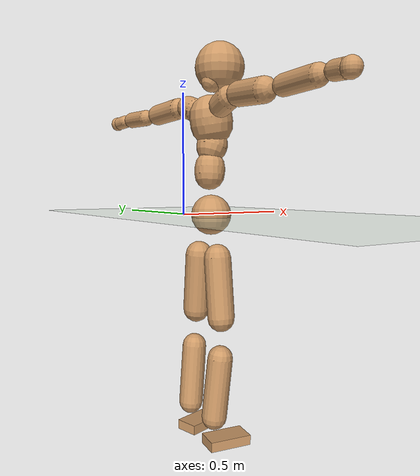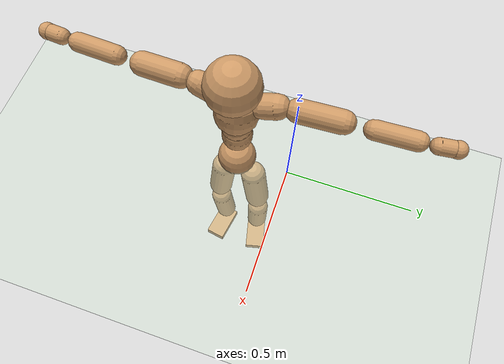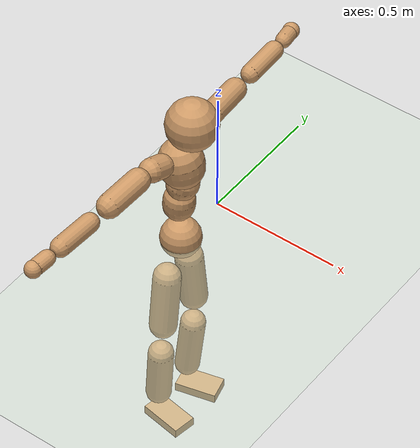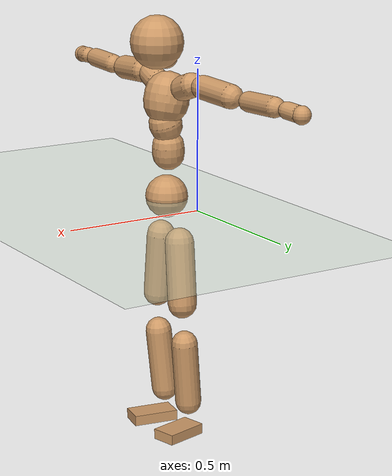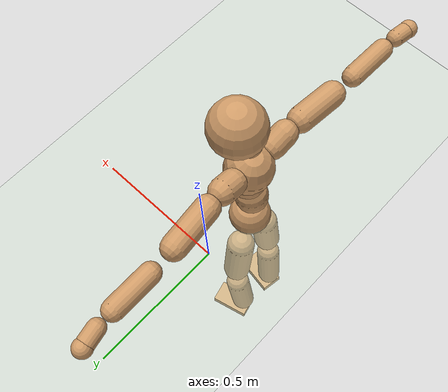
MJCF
<mujoco model="humanoid">
  <compiler coordinate="local"/>
  <default>
    <joint damping="0.0" armature="0.01" stiffness="0.0" limited="true"/>
    <geom conaffinity="1" condim="3" contype="7" margin="0.001" rgba="0.8 0.6 .4 1"/>
  </default>
  <asset>
    <texture type="skybox" builtin="gradient" rgb1=".4 .5 .6" rgb2="0 0 0" width="100" height="100"/>
    <texture builtin="flat" height="1278" mark="cross" markrgb="1 1 1" name="texgeom" random="0.01" rgb1="0.8 0.6 0.4" rgb2="0.8 0.6 0.4" type="cube" width="127"/>
    <texture builtin="checker" height="100" name="texplane" rgb1="0 0 0" rgb2="0.8 0.8 0.8" type="2d" width="100"/>
    <material name="MatPlane" reflectance="0.5" shininess="1" specular="1" texrepeat="60 60" texture="texplane"/>
    <material name="geom" texture="texgeom" texuniform="true"/>
  </asset>
  <worldbody>
    <light cutoff="100" diffuse="1 1 1" dir="-0 0 -1.3" directional="true" exponent="1" pos="0 0 1.3" specular=".1 .1 .1"/>
    <geom conaffinity="1" condim="3" name="floor" pos="0 0 0" rgba="0.8 0.9 0.8 1" size="100 100 .2" type="plane" material="MatPlane"/>
    <body name="Pelvis" pos="-0.0032 -0.2119 0.0074">
      <freejoint name="Pelvis"/>
      <geom type="sphere" contype="1" conaffinity="1" density="500" size="0.0773" pos="0.0000 0.0000 0.0000" name="Pelvis"/>
      <body name="L_Hip" pos="-0.0151 0.0571 -0.0844">
        <joint name="L_Hip_x" type="hinge" pos="0 0 0" axis="1 0 0" stiffness="800" damping="80" armature="0.02" range="-180.0000 180.0000"/>
        <joint name="L_Hip_y" type="hinge" pos="0 0 0" axis="0 1 0" stiffness="800" damping="80" armature="0.02" range="-180.0000 180.0000"/>
        <joint name="L_Hip_z" type="hinge" pos="0 0 0" axis="0 0 1" stiffness="800" damping="80" armature="0.02" range="-180.0000 180.0000"/>
        <geom type="capsule" contype="1" conaffinity="1" density="500" fromto="0.0010 0.0082 -0.0758 0.0039 0.0327 -0.3031" size="0.0528" name="L_Hip"/>
        <body name="L_Knee" pos="0.0049 0.0408 -0.3788">
          <joint name="L_Knee_x" type="hinge" pos="0 0 0" axis="1 0 0" stiffness="800" damping="80" armature="0.02" range="-180.0000 180.0000"/>
          <joint name="L_Knee_y" type="hinge" pos="0 0 0" axis="0 1 0" stiffness="800" damping="80" armature="0.02" range="-180.0000 180.0000"/>
          <joint name="L_Knee_z" type="hinge" pos="0 0 0" axis="0 0 1" stiffness="800" damping="80" armature="0.02" range="-180.0000 180.0000"/>
          <geom type="capsule" contype="1" conaffinity="1" density="500" fromto="-0.0073 -0.0026 -0.0776 -0.0291 -0.0104 -0.3104" size="0.0479" name="L_Knee"/>
          <body name="L_Ankle" pos="-0.0364 -0.013 -0.388">
            <joint name="L_Ankle_x" type="hinge" pos="0 0 0" axis="1 0 0" stiffness="800" damping="80" armature="0.02" range="-180.0000 180.0000"/>
            <joint name="L_Ankle_y" type="hinge" pos="0 0 0" axis="0 1 0" stiffness="800" damping="80" armature="0.02" range="-180.0000 180.0000"/>
            <joint name="L_Ankle_z" type="hinge" pos="0 0 0" axis="0 0 1" stiffness="800" damping="80" armature="0.02" range="-180.0000 180.0000"/>
            <geom type="box" contype="1" conaffinity="1" density="500" pos="0.0572 0.0139 -0.0271" size="0.0802 0.0459 0.0189" quat="0.9929 0.0000 0.0000 0.1192" name="L_Ankle"/>
            <body name="L_Toe" pos="0.1144 0.0279 -0.0541">
              <joint name="L_Toe_x" type="hinge" pos="0 0 0" axis="1 0 0" stiffness="500" damping="50" armature="0.02" range="-180.0000 180.0000"/>
              <joint name="L_Toe_y" type="hinge" pos="0 0 0" axis="0 1 0" stiffness="500" damping="50" armature="0.02" range="-180.0000 180.0000"/>
              <joint name="L_Toe_z" type="hinge" pos="0 0 0" axis="0 0 1" stiffness="500" damping="50" armature="0.02" range="-180.0000 180.0000"/>
              <geom type="box" contype="1" conaffinity="1" density="500" pos="0.0000 0.0000 0.0280" size="0.0009 0.0022 0.001" quat="0.9921 0.0000 0.0000 0.1253" name="L_Toe"/>
            </body>
          </body>
        </body>
      </body>
      <body name="R_Hip" pos="-0.0137 -0.0552 -0.0831">
        <joint name="R_Hip_x" type="hinge" pos="0 0 0" axis="1 0 0" stiffness="800" damping="80" armature="0.02" range="-180.0000 180.0000"/>
        <joint name="R_Hip_y" type="hinge" pos="0 0 0" axis="0 1 0" stiffness="800" damping="80" armature="0.02" range="-180.0000 180.0000"/>
        <joint name="R_Hip_z" type="hinge" pos="0 0 0" axis="0 0 1" stiffness="800" damping="80" armature="0.02" range="-180.0000 180.0000"/>
        <geom type="capsule" contype="1" conaffinity="1" density="500" fromto="-0.0001 -0.0087 -0.0767 -0.0005 -0.0346 -0.3068" size="0.0517" name="R_Hip"/>
        <body name="R_Knee" pos="-0.0006 -0.0433 -0.3835">
          <joint name="R_Knee_x" type="hinge" pos="0 0 0" axis="1 0 0" stiffness="800" damping="80" armature="0.02" range="-180.0000 180.0000"/>
          <joint name="R_Knee_y" type="hinge" pos="0 0 0" axis="0 1 0" stiffness="800" damping="80" armature="0.02" range="-180.0000 180.0000"/>
          <joint name="R_Knee_z" type="hinge" pos="0 0 0" axis="0 0 1" stiffness="800" damping="80" armature="0.02" range="-180.0000 180.0000"/>
          <geom type="capsule" contype="1" conaffinity="1" density="500" fromto="-0.0069 0.0032 -0.0774 -0.0276 0.0126 -0.3094" size="0.0484" name="R_Knee"/>
          <body name="R_Ankle" pos="-0.0344 0.0158 -0.3868">
            <joint name="R_Ankle_x" type="hinge" pos="0 0 0" axis="1 0 0" stiffness="800" damping="80" armature="0.02" range="-180.0000 180.0000"/>
            <joint name="R_Ankle_y" type="hinge" pos="0 0 0" axis="0 1 0" stiffness="800" damping="80" armature="0.02" range="-180.0000 180.0000"/>
            <joint name="R_Ankle_z" type="hinge" pos="0 0 0" axis="0 0 1" stiffness="800" damping="80" armature="0.02" range="-180.0000 180.0000"/>
            <geom type="box" contype="1" conaffinity="1" density="500" pos="0.0593 -0.0098 -0.0235" size="0.0837 0.0455 0.0191" quat="0.9967 0.0000 0.0000 -0.0817" name="R_Ankle"/>
            <body name="R_Toe" pos="0.1187 -0.0196 -0.0469">
              <joint name="R_Toe_x" type="hinge" pos="0 0 0" axis="1 0 0" stiffness="500" damping="50" armature="0.02" range="-180.0000 180.0000"/>
              <joint name="R_Toe_y" type="hinge" pos="0 0 0" axis="0 1 0" stiffness="500" damping="50" armature="0.02" range="-180.0000 180.0000"/>
              <joint name="R_Toe_z" type="hinge" pos="0 0 0" axis="0 0 1" stiffness="500" damping="50" armature="0.02" range="-180.0000 180.0000"/>
              <geom type="box" contype="1" conaffinity="1" density="500" pos="0.0000 0.0000 0.0255" size="0.0009 0.0022 0.0011" quat="0.9974 0.0000 0.0000 -0.0723" name="R_Toe"/>
            </body>
          </body>
        </body>
      </body>
      <body name="Torso" pos="-0.0118 -0.0029 0.0995">
        <joint name="Torso_x" type="hinge" pos="0 0 0" axis="1 0 0" stiffness="1000" damping="100" armature="0.02" range="-180.0000 180.0000"/>
        <joint name="Torso_y" type="hinge" pos="0 0 0" axis="0 1 0" stiffness="1000" damping="100" armature="0.02" range="-180.0000 180.0000"/>
        <joint name="Torso_z" type="hinge" pos="0 0 0" axis="0 0 1" stiffness="1000" damping="100" armature="0.02" range="-180.0000 180.0000"/>
        <geom type="capsule" contype="1" conaffinity="1" density="500" fromto="0.0058 0.0040 0.0837 0.0039 0.0027 0.0558" size="0.0585" name="Torso"/>
        <body name="Spine" pos="0.0097 0.0067 0.1395">
          <joint name="Spine_x" type="hinge" pos="0 0 0" axis="1 0 0" stiffness="1000" damping="100" armature="0.02" range="-180.0000 180.0000"/>
          <joint name="Spine_y" type="hinge" pos="0 0 0" axis="0 1 0" stiffness="1000" damping="100" armature="0.02" range="-180.0000 180.0000"/>
          <joint name="Spine_z" type="hinge" pos="0 0 0" axis="0 0 1" stiffness="1000" damping="100" armature="0.02" range="-180.0000 180.0000"/>
          <geom type="capsule" contype="1" conaffinity="1" density="500" fromto="0.0102 0.0008 0.0312 0.0068 0.0005 0.0208" size="0.0595" name="Spine"/>
          <body name="Chest" pos="0.017 0.0013 0.052">
            <joint name="Chest_x" type="hinge" pos="0 0 0" axis="1 0 0" stiffness="1000" damping="100" armature="0.02" range="-180.0000 180.0000"/>
            <joint name="Chest_y" type="hinge" pos="0 0 0" axis="0 1 0" stiffness="1000" damping="100" armature="0.02" range="-180.0000 180.0000"/>
            <joint name="Chest_z" type="hinge" pos="0 0 0" axis="0 0 1" stiffness="1000" damping="100" armature="0.02" range="-180.0000 180.0000"/>
            <geom type="capsule" contype="1" conaffinity="1" density="500" fromto="-0.0163 -0.0017 0.0829 -0.0109 -0.0011 0.0552" size="0.0822" name="Chest"/>
            <body name="Neck" pos="-0.0247 -0.0047 0.1983">
              <joint name="Neck_x" type="hinge" pos="0 0 0" axis="1 0 0" stiffness="500" damping="50" armature="0.02" range="-180.0000 180.0000"/>
              <joint name="Neck_y" type="hinge" pos="0 0 0" axis="0 1 0" stiffness="500" damping="50" armature="0.02" range="-180.0000 180.0000"/>
              <joint name="Neck_z" type="hinge" pos="0 0 0" axis="0 0 1" stiffness="500" damping="50" armature="0.02" range="-180.0000 180.0000"/>
              <geom type="capsule" contype="1" conaffinity="1" density="500" fromto="0.0106 0.0015 0.0146 0.0425 0.0061 0.0586" size="0.0396" name="Neck"/>
              <body name="Head" pos="0.0531 0.0076 0.0732">
                <joint name="Head_x" type="hinge" pos="0 0 0" axis="1 0 0" stiffness="500" damping="50" armature="0.02" range="-180.0000 180.0000"/>
                <joint name="Head_y" type="hinge" pos="0 0 0" axis="0 1 0" stiffness="500" damping="50" armature="0.02" range="-180.0000 180.0000"/>
                <joint name="Head_z" type="hinge" pos="0 0 0" axis="0 0 1" stiffness="500" damping="50" armature="0.02" range="-180.0000 180.0000"/>
                <geom type="sphere" contype="1" conaffinity="1" density="500" size="0.0956" pos="0.0000 0.0000 0.0000" name="Head"/>
              </body>
            </body>
            <body name="L_Thorax" pos="-0.0265 0.0691 0.1096">
              <joint name="L_Thorax_x" type="hinge" pos="0 0 0" axis="1 0 0" stiffness="500" damping="50" armature="0.02" range="-180.0000 180.0000"/>
              <joint name="L_Thorax_y" type="hinge" pos="0 0 0" axis="0 1 0" stiffness="500" damping="50" armature="0.02" range="-180.0000 180.0000"/>
              <joint name="L_Thorax_z" type="hinge" pos="0 0 0" axis="0 0 1" stiffness="500" damping="50" armature="0.02" range="-180.0000 180.0000"/>
              <geom type="capsule" contype="1" conaffinity="1" density="500" fromto="-0.0011 0.0167 0.0058 -0.0044 0.0668 0.0234" size="0.0449" name="L_Thorax"/>
              <body name="L_Shoulder" pos="-0.0054 0.0835 0.0292">
                <joint name="L_Shoulder_x" type="hinge" pos="0 0 0" axis="1 0 0" stiffness="500" damping="50" armature="0.02" range="-720.0000 720.0000"/>
                <joint name="L_Shoulder_y" type="hinge" pos="0 0 0" axis="0 1 0" stiffness="500" damping="50" armature="0.02" range="-720.0000 720.0000"/>
                <joint name="L_Shoulder_z" type="hinge" pos="0 0 0" axis="0 0 1" stiffness="500" damping="50" armature="0.02" range="-720.0000 720.0000"/>
                <geom type="capsule" contype="1" conaffinity="1" density="500" fromto="-0.0044 0.0508 -0.0031 -0.0175 0.2034 -0.0123" size="0.0424" name="L_Shoulder"/>
                <body name="L_Elbow" pos="-0.0218 0.2542 -0.0154">
                  <joint name="L_Elbow_x" type="hinge" pos="0 0 0" axis="1 0 0" stiffness="500" damping="50" armature="0.02" range="-720.0000 720.0000"/>
                  <joint name="L_Elbow_y" type="hinge" pos="0 0 0" axis="0 1 0" stiffness="500" damping="50" armature="0.02" range="-720.0000 720.0000"/>
                  <joint name="L_Elbow_z" type="hinge" pos="0 0 0" axis="0 0 1" stiffness="500" damping="50" armature="0.02" range="-720.0000 720.0000"/>
                  <geom type="capsule" contype="1" conaffinity="1" density="500" fromto="-0.0009 0.0481 0.0015 -0.0036 0.1924 0.0061" size="0.0349" name="L_Elbow"/>
                  <body name="L_Wrist" pos="-0.0044 0.2405 0.0077">
                    <joint name="L_Wrist_x" type="hinge" pos="0 0 0" axis="1 0 0" stiffness="300" damping="30" armature="0.02" range="-180.0000 180.0000"/>
                    <joint name="L_Wrist_y" type="hinge" pos="0 0 0" axis="0 1 0" stiffness="300" damping="30" armature="0.02" range="-180.0000 180.0000"/>
                    <joint name="L_Wrist_z" type="hinge" pos="0 0 0" axis="0 0 1" stiffness="300" damping="30" armature="0.02" range="-180.0000 180.0000"/>
                    <geom type="capsule" contype="1" conaffinity="1" density="500" fromto="-0.0029 0.0157 -0.0015 -0.0114 0.0629 -0.0062" size="0.0293" name="L_Wrist"/>
                    <body name="L_Hand" pos="-0.0143 0.0786 -0.0077">
                      <joint name="L_Hand_x" type="hinge" pos="0 0 0" axis="1 0 0" stiffness="300" damping="30" armature="0.02" range="-180.0000 180.0000"/>
                      <joint name="L_Hand_y" type="hinge" pos="0 0 0" axis="0 1 0" stiffness="300" damping="30" armature="0.02" range="-180.0000 180.0000"/>
                      <joint name="L_Hand_z" type="hinge" pos="0 0 0" axis="0 0 1" stiffness="300" damping="30" armature="0.02" range="-180.0000 180.0000"/>
                      <geom type="sphere" contype="1" conaffinity="1" density="500" size="0.0314" pos="0.0000 0.0000 0.0000" name="L_Hand"/>
                    </body>
                  </body>
                </body>
              </body>
            </body>
            <body name="R_Thorax" pos="-0.0304 -0.073 0.1064">
              <joint name="R_Thorax_x" type="hinge" pos="0 0 0" axis="1 0 0" stiffness="500" damping="50" armature="0.02" range="-180.0000 180.0000"/>
              <joint name="R_Thorax_y" type="hinge" pos="0 0 0" axis="0 1 0" stiffness="500" damping="50" armature="0.02" range="-180.0000 180.0000"/>
              <joint name="R_Thorax_z" type="hinge" pos="0 0 0" axis="0 0 1" stiffness="500" damping="50" armature="0.02" range="-180.0000 180.0000"/>
              <geom type="capsule" contype="1" conaffinity="1" density="500" fromto="-0.0012 -0.0176 0.0064 -0.0048 -0.0705 0.0254" size="0.0442" name="R_Thorax"/>
              <body name="R_Shoulder" pos="-0.006 -0.0881 0.0318">
                <joint name="R_Shoulder_x" type="hinge" pos="0 0 0" axis="1 0 0" stiffness="500" damping="50" armature="0.02" range="-720.0000 720.0000"/>
                <joint name="R_Shoulder_y" type="hinge" pos="0 0 0" axis="0 1 0" stiffness="500" damping="50" armature="0.02" range="-720.0000 720.0000"/>
                <joint name="R_Shoulder_z" type="hinge" pos="0 0 0" axis="0 0 1" stiffness="500" damping="50" armature="0.02" range="-720.0000 720.0000"/>
                <geom type="capsule" contype="1" conaffinity="1" density="500" fromto="-0.0032 -0.0488 -0.0032 -0.0126 -0.1951 -0.0128" size="0.0442" name="R_Shoulder"/>
                <body name="R_Elbow" pos="-0.0158 -0.2438 -0.0159">
                  <joint name="R_Elbow_x" type="hinge" pos="0 0 0" axis="1 0 0" stiffness="500" damping="50" armature="0.02" range="-720.0000 720.0000"/>
                  <joint name="R_Elbow_y" type="hinge" pos="0 0 0" axis="0 1 0" stiffness="500" damping="50" armature="0.02" range="-720.0000 720.0000"/>
                  <joint name="R_Elbow_z" type="hinge" pos="0 0 0" axis="0 0 1" stiffness="500" damping="50" armature="0.02" range="-720.0000 720.0000"/>
                  <geom type="capsule" contype="1" conaffinity="1" density="500" fromto="-0.0017 -0.0495 0.0012 -0.0067 -0.1980 0.0049" size="0.0353" name="R_Elbow"/>
                  <body name="R_Wrist" pos="-0.0084 -0.2476 0.0061">
                    <joint name="R_Wrist_x" type="hinge" pos="0 0 0" axis="1 0 0" stiffness="300" damping="30" armature="0.02" range="-180.0000 180.0000"/>
                    <joint name="R_Wrist_y" type="hinge" pos="0 0 0" axis="0 1 0" stiffness="300" damping="30" armature="0.02" range="-180.0000 180.0000"/>
                    <joint name="R_Wrist_z" type="hinge" pos="0 0 0" axis="0 0 1" stiffness="300" damping="30" armature="0.02" range="-180.0000 180.0000"/>
                    <geom type="capsule" contype="1" conaffinity="1" density="500" fromto="-0.0019 -0.0157 -0.0011 -0.0074 -0.0627 -0.0044" size="0.0298" name="R_Wrist"/>
                    <body name="R_Hand" pos="-0.0093 -0.0784 -0.0055">
                      <joint name="R_Hand_x" type="hinge" pos="0 0 0" axis="1 0 0" stiffness="300" damping="30" armature="0.02" range="-180.0000 180.0000"/>
                      <joint name="R_Hand_y" type="hinge" pos="0 0 0" axis="0 1 0" stiffness="300" damping="30" armature="0.02" range="-180.0000 180.0000"/>
                      <joint name="R_Hand_z" type="hinge" pos="0 0 0" axis="0 0 1" stiffness="300" damping="30" armature="0.02" range="-180.0000 180.0000"/>
                      <geom type="sphere" contype="1" conaffinity="1" density="500" size="0.0314" pos="0.0000 0.0000 0.0000" name="R_Hand"/>
                    </body>
                  </body>
                </body>
              </body>
            </body>
          </body>
        </body>
      </body>
    </body>
  </worldbody>
  <actuator>
    <motor name="L_Hip_x" joint="L_Hip_x" gear="500"/>
    <motor name="L_Hip_y" joint="L_Hip_y" gear="500"/>
    <motor name="L_Hip_z" joint="L_Hip_z" gear="500"/>
    <motor name="L_Knee_x" joint="L_Knee_x" gear="500"/>
    <motor name="L_Knee_y" joint="L_Knee_y" gear="500"/>
    <motor name="L_Knee_z" joint="L_Knee_z" gear="500"/>
    <motor name="L_Ankle_x" joint="L_Ankle_x" gear="500"/>
    <motor name="L_Ankle_y" joint="L_Ankle_y" gear="500"/>
    <motor name="L_Ankle_z" joint="L_Ankle_z" gear="500"/>
    <motor name="L_Toe_x" joint="L_Toe_x" gear="500"/>
    <motor name="L_Toe_y" joint="L_Toe_y" gear="500"/>
    <motor name="L_Toe_z" joint="L_Toe_z" gear="500"/>
    <motor name="R_Hip_x" joint="R_Hip_x" gear="500"/>
    <motor name="R_Hip_y" joint="R_Hip_y" gear="500"/>
    <motor name="R_Hip_z" joint="R_Hip_z" gear="500"/>
    <motor name="R_Knee_x" joint="R_Knee_x" gear="500"/>
    <motor name="R_Knee_y" joint="R_Knee_y" gear="500"/>
    <motor name="R_Knee_z" joint="R_Knee_z" gear="500"/>
    <motor name="R_Ankle_x" joint="R_Ankle_x" gear="500"/>
    <motor name="R_Ankle_y" joint="R_Ankle_y" gear="500"/>
    <motor name="R_Ankle_z" joint="R_Ankle_z" gear="500"/>
    <motor name="R_Toe_x" joint="R_Toe_x" gear="500"/>
    <motor name="R_Toe_y" joint="R_Toe_y" gear="500"/>
    <motor name="R_Toe_z" joint="R_Toe_z" gear="500"/>
    <motor name="Torso_x" joint="Torso_x" gear="500"/>
    <motor name="Torso_y" joint="Torso_y" gear="500"/>
    <motor name="Torso_z" joint="Torso_z" gear="500"/>
    <motor name="Spine_x" joint="Spine_x" gear="500"/>
    <motor name="Spine_y" joint="Spine_y" gear="500"/>
    <motor name="Spine_z" joint="Spine_z" gear="500"/>
    <motor name="Chest_x" joint="Chest_x" gear="500"/>
    <motor name="Chest_y" joint="Chest_y" gear="500"/>
    <motor name="Chest_z" joint="Chest_z" gear="500"/>
    <motor name="Neck_x" joint="Neck_x" gear="500"/>
    <motor name="Neck_y" joint="Neck_y" gear="500"/>
    <motor name="Neck_z" joint="Neck_z" gear="500"/>
    <motor name="Head_x" joint="Head_x" gear="500"/>
    <motor name="Head_y" joint="Head_y" gear="500"/>
    <motor name="Head_z" joint="Head_z" gear="500"/>
    <motor name="L_Thorax_x" joint="L_Thorax_x" gear="500"/>
    <motor name="L_Thorax_y" joint="L_Thorax_y" gear="500"/>
    <motor name="L_Thorax_z" joint="L_Thorax_z" gear="500"/>
    <motor name="L_Shoulder_x" joint="L_Shoulder_x" gear="500"/>
    <motor name="L_Shoulder_y" joint="L_Shoulder_y" gear="500"/>
    <motor name="L_Shoulder_z" joint="L_Shoulder_z" gear="500"/>
    <motor name="L_Elbow_x" joint="L_Elbow_x" gear="500"/>
    <motor name="L_Elbow_y" joint="L_Elbow_y" gear="500"/>
    <motor name="L_Elbow_z" joint="L_Elbow_z" gear="500"/>
    <motor name="L_Wrist_x" joint="L_Wrist_x" gear="500"/>
    <motor name="L_Wrist_y" joint="L_Wrist_y" gear="500"/>
    <motor name="L_Wrist_z" joint="L_Wrist_z" gear="500"/>
    <motor name="L_Hand_x" joint="L_Hand_x" gear="500"/>
    <motor name="L_Hand_y" joint="L_Hand_y" gear="500"/>
    <motor name="L_Hand_z" joint="L_Hand_z" gear="500"/>
    <motor name="R_Thorax_x" joint="R_Thorax_x" gear="500"/>
    <motor name="R_Thorax_y" joint="R_Thorax_y" gear="500"/>
    <motor name="R_Thorax_z" joint="R_Thorax_z" gear="500"/>
    <motor name="R_Shoulder_x" joint="R_Shoulder_x" gear="500"/>
    <motor name="R_Shoulder_y" joint="R_Shoulder_y" gear="500"/>
    <motor name="R_Shoulder_z" joint="R_Shoulder_z" gear="500"/>
    <motor name="R_Elbow_x" joint="R_Elbow_x" gear="500"/>
    <motor name="R_Elbow_y" joint="R_Elbow_y" gear="500"/>
    <motor name="R_Elbow_z" joint="R_Elbow_z" gear="500"/>
    <motor name="R_Wrist_x" joint="R_Wrist_x" gear="500"/>
    <motor name="R_Wrist_y" joint="R_Wrist_y" gear="500"/>
    <motor name="R_Wrist_z" joint="R_Wrist_z" gear="500"/>
    <motor name="R_Hand_x" joint="R_Hand_x" gear="500"/>
    <motor name="R_Hand_y" joint="R_Hand_y" gear="500"/>
    <motor name="R_Hand_z" joint="R_Hand_z" gear="500"/>
  </actuator>
  <contact>
    <exclude body1="Torso" body2="Chest"/>
    <exclude body1="Head" body2="Chest"/>
    <exclude body1="R_Knee" body2="R_Toe"/>
    <exclude body1="R_Knee" body2="L_Ankle"/>
    <exclude body1="R_Knee" body2="L_Toe"/>
    <exclude body1="L_Knee" body2="L_Toe"/>
    <exclude body1="L_Knee" body2="R_Ankle"/>
    <exclude body1="L_Knee" body2="R_Toe"/>
    <exclude body1="L_Shoulder" body2="Chest"/>
    <exclude body1="R_Shoulder" body2="Chest"/>
  </contact>
  <sensor/>
  <size njmax="700" nconmax="700"/>
</mujoco>
